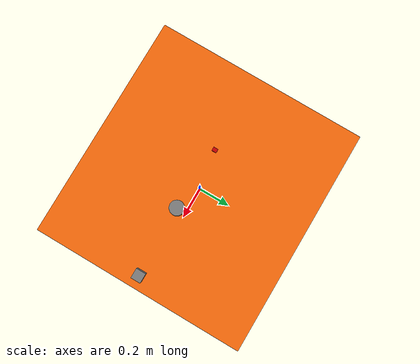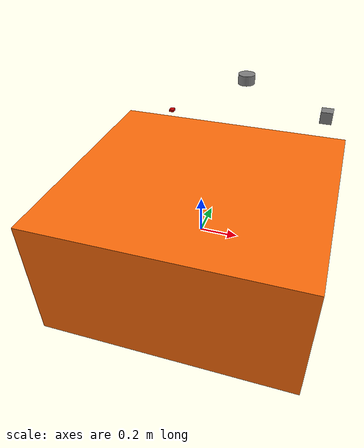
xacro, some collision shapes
<?xml version="1.0"?>
<robot xmlns:xacro="http://www.ros.org/wiki/xacro" name="mowbot-T1">

  <xacro:property name="PI" value="3.1415926535897931"/>
  <xacro:property name="length" value="1.34"/>
  <xacro:property name="width" value="1.26"/>
  <xacro:property name="height" value="0.662"/>

  <material name="red">
    <color rgba="0.8 0.0 0.0 1.0"/>
  </material>

  <material name="grey">
    <color rgba="0.5 0.5 0.5 1.0"/>
  </material>

  <material name="orange">
    <color rgba="1.0 0.4235 0.0392 1.0"/>
  </material>

  <link name="base_footprint">
    <visual>
      <geometry>
        <mesh filename="package://mowbot_description/meshes/mowbot_v01.stl" scale="1.0 1.0 1.0"/>
      </geometry>
      <material name="orange"/>
    </visual>

    <collision>
      <geometry>
        <box size="${length} ${width} ${height}"/>
      </geometry>
    </collision>
  </link>

  <link name="base_link">
  </link>

  <joint name="footprint_to_base_joint" type="fixed">
    <parent link="base_footprint"/>
    <child link="base_link"/>
    <origin xyz="0.0 0.0 0.335" rpy="0.0 0.0 0.0"/>
  </joint>

  <link name="imu_link">
    <visual>
      <geometry>
        <box size="0.02 0.025 0.01"/>
      </geometry>
      <material name="red"/>
    </visual>
  </link>

  <joint name="base_to_imu_joint" type="fixed">
    <parent link="base_link"/>
    <child link="imu_link"/>
    <origin xyz="-0.14 0.0 ${height - 0.335 + 0.015}" rpy="0.0 0.0 0.0"/>
  </joint>

  <link name="mag_link"></link>

  <joint name="imu_to_mag_joint" type="fixed">
    <parent link="imu_link"/>
    <child link="mag_link"/>
    <origin xyz="0.0 0.0 0.0" rpy="0.0 0.0 0.0"/>
  </joint>

  <link name="laser_link">
    <visual>
      <geometry>
        <cylinder radius="0.035" length="0.04"/>
      </geometry>
      <material name="grey"/>
    </visual>
  </link>

  <joint name="base_to_laser_joint" type="fixed">
    <parent link="base_link"/>
    <child link="laser_link"/>
    <origin xyz="0.2 0.0 ${height - 0.335 + 0.2}" rpy="0.0 0.0 ${PI}"/>
  </joint>

  <link name="camera_link">
    <visual>
      <geometry>
        <box size="0.05 0.05 0.05"/>
      </geometry>
      <material name="grey"/>
    </visual>
  </link>

  <joint name="base_to_camera_joint" type="fixed">
    <parent link="base_link"/>
    <child link="camera_link"/>
    <origin xyz="0.55 0.0 ${height - 0.335 + 0.08}" rpy="0.0 0.0 0.0"/>
  </joint>

  <link name="uwb_tag_link">
  </link>

  <joint name="uwb_tag_joint" type="fixed">
    <parent link="base_link"/>
    <child link="uwb_tag_link"/>
    <origin xyz="0.0 0.0 0.0" rpy="0.0 0.0 0.0"/>
  </joint>

  <link name="gps_right_link">
  </link>

  <joint name="base_to_gps_right_joint" type="fixed">
    <parent link="base_link"/>
    <child link="gps_right_link"/>
    <origin xyz="-0.1 -0.52 ${height - 0.335 -0.05}" rpy="0.0 0.0 0.0"/>
  </joint>

  <link name="gps_left_link">
  </link>

  <joint name="base_to_gps_left_joint" type="fixed">
    <parent link="base_link"/>
    <child link="gps_left_link"/>
    <origin xyz="-0.1 0.52 ${height - 0.335 - 0.05}" rpy="0.0 0.0 0.0"/>
  </joint>

</robot>
